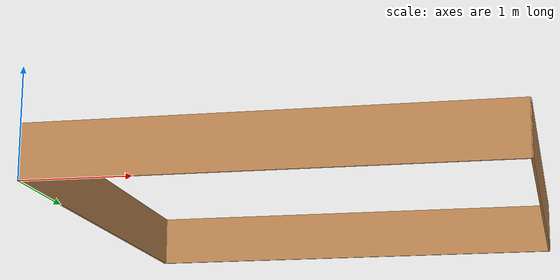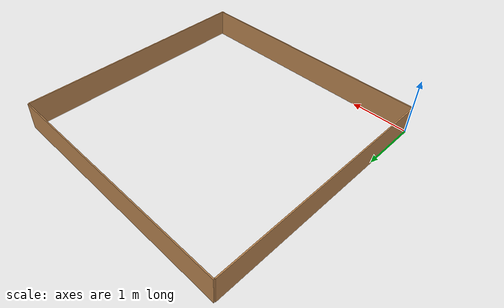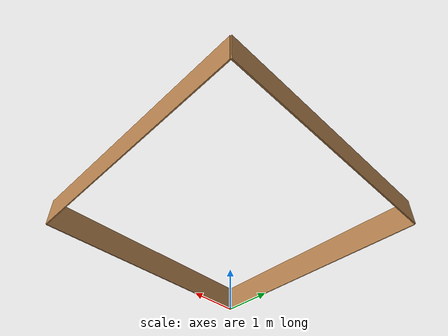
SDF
<?xml version='1.0'?>
<sdf version='1.6'>
  <model name='eced3901_martian'>
    <pose frame=''>0 0 0 0 -0 0</pose>
    <link name='Wall_0'>
      <collision name='Wall_0_Collision'>
        <geometry>
          <box>
            <size>4.2672 0.02 0.5</size>
          </box>
        </geometry>
        <pose frame=''>0 0 0.25 0 -0 0</pose>
      </collision>
      <visual name='Wall_0_Visual'>
        <pose frame=''>0 0 0.25 0 -0 0</pose>
        <geometry>
          <box>
            <size>4.2672 0.02 0.5</size>
          </box>
        </geometry>
        <material>
          <script>
            <uri>file://media/materials/scripts/gazebo.material</uri>
            <name>Gazebo/Wood</name>
          </script>
          <ambient>1 1 1 1</ambient>
        </material>
      </visual>
      <pose frame=''>2.1336 4.28 0 0 -0 0</pose>
    </link>
    <link name='Wall_2'>
      <collision name='Wall_2_Collision'>
        <geometry>
          <box>
            <size>4.2672 0.02 0.5</size>
          </box>
        </geometry>
        <pose frame=''>0 0 0.25 0 -0 0</pose>
      </collision>
      <visual name='Wall_2_Visual'>
        <pose frame=''>0 0 0.25 0 -0 0</pose>
        <geometry>
          <box>
            <size>4.2672 0.02 0.5</size>
          </box>
        </geometry>
        <material>
          <script>
            <uri>file://media/materials/scripts/gazebo.material</uri>
            <name>Gazebo/Wood</name>
          </script>
          <ambient>1 1 1 1</ambient>
        </material>
      </visual>
      <pose frame=''>0 2.1336 0 0 0 -1.5708</pose>
    </link>
    <link name='Wall_3'>
      <collision name='Wall_3_Collision'>
        <geometry>
          <box>
            <size>4.2672 0.02 0.5</size>
          </box>
        </geometry>
        <pose frame=''>0 0 0.25 0 -0 0</pose>
      </collision>
      <visual name='Wall_3_Visual'>
        <pose frame=''>0 0 0.25 0 -0 0</pose>
        <geometry>
          <box>
            <size>4.2672 0.02 0.5</size>
          </box>
        </geometry>
        <material>
          <script>
            <uri>file://media/materials/scripts/gazebo.material</uri>
            <name>Gazebo/Wood</name>
          </script>
          <ambient>1 1 1 1</ambient>
        </material>
      </visual>
      <pose frame=''>2.1336 0 0 0 0 0</pose>
    </link>
    <link name='Wall_4'>
      <collision name='Wall_4_Collision'>
        <geometry>
          <box>
            <size>4.2672 0.02 0.5</size>
          </box>
        </geometry>
        <pose frame=''>0 0 0.25 0 -0 0</pose>
      </collision>
      <visual name='Wall_4_Visual'>
        <pose frame=''>0 0 0.25 0 -0 0</pose>
        <geometry>
          <box>
            <size>4.2672 0.02 0.5</size>
          </box>
        </geometry>
        <material>
          <script>
            <uri>file://media/materials/scripts/gazebo.material</uri>
            <name>Gazebo/Wood</name>
          </script>
          <ambient>1 1 1 1</ambient>
        </material>
      </visual>
      <pose frame=''>4.2672 2.1336 0 0 -0 1.5708</pose>
    </link>
    <static>1</static>
  </model>
</sdf>
